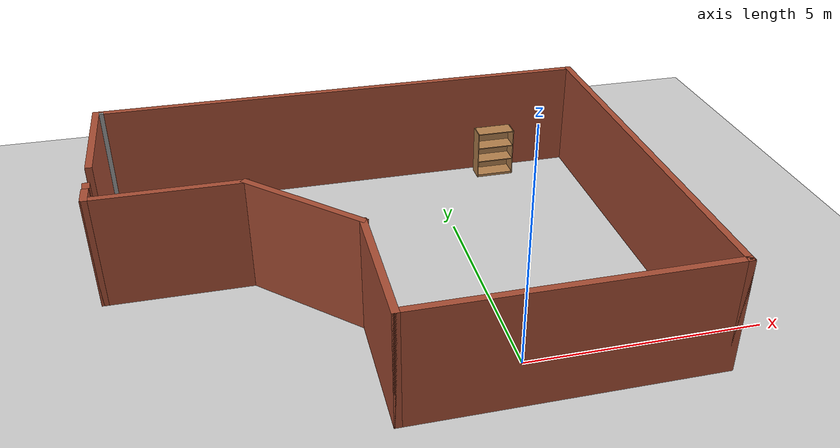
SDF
<sdf version="1.7">
 <world name="default">
  <light name="sun" type="directional">
   <pose>0 0 10 0 -0 0</pose>
   <diffuse>0.8 0.8 0.8 1</diffuse>
   <specular>0.2 0.2 0.2 1</specular>
   <attenuation>
    <range>1000</range>
    <constant>0.9</constant>
    <linear>0.01</linear>
    <quadratic>0.001</quadratic>
   </attenuation>
   <direction>-0.5 0.1 -0.9</direction>
   <spot><inner_angle>0</inner_angle><outer_angle>0</outer_angle><falloff>0</falloff></spot>
  </light>
  <model name="ground_plane">
   <static>1</static>
   <link name="link">
    <collision name="collision">
     <geometry><plane><normal>0 0 1</normal><size>100 100</size></plane></geometry>
     <surface>
      <contact><collide_bitmask>65535</collide_bitmask></contact>
      <friction><ode><mu>100</mu><mu2>50</mu2></ode></friction>
     </surface>
    </collision>
    <visual name="visual">
     <cast_shadows>0</cast_shadows>
     <geometry><plane><normal>0 0 1</normal><size>100 100</size></plane></geometry>
     <material>
      <script><uri>file://media/materials/scripts/gazebo.material</uri><name>Gazebo/Grey</name></script>
     </material>
    </visual>
   </link>
  </model>
  <gravity>0 0 -9.8</gravity>
  <magnetic_field>6e-06 2.3e-05 -4.2e-05</magnetic_field>
  <atmosphere type="adiabatic"/>
  <physics type="ode">
   <max_step_size>0.001</max_step_size>
   <real_time_factor>1</real_time_factor>
   <real_time_update_rate>1000</real_time_update_rate>
  </physics>
  <scene><ambient>0.4 0.4 0.4 1</ambient><background>0.7 0.7 0.7 1</background><shadows>1</shadows></scene>
  <spherical_coordinates>
   <surface_model>EARTH_WGS84</surface_model>
   <latitude_deg>0</latitude_deg>
   <longitude_deg>0</longitude_deg>
   <elevation>0</elevation>
   <heading_deg>0</heading_deg>
  </spherical_coordinates>
  <model name="room-with-slant">
   <pose>-2.03802 3.36232 0 0 -0 0</pose>
   <link name="Wall_0">
    <collision name="Wall_0_Collision">
     <geometry><box><size>0.5 0.15 2.5</size></box></geometry>
     <pose>0 0 1.25 0 -0 0</pose>
    </collision>
    <visual name="Wall_0_Visual">
     <pose>0 0 1.25 0 -0 0</pose>
     <geometry><box><size>0.5 0.15 2.5</size></box></geometry>
     <material>
      <script><uri>file://media/materials/scripts/gazebo.material</uri><name>Gazebo/Bricks</name></script>
      <ambient>1 1 1 1</ambient>
     </material>
     <meta><layer>0</layer></meta>
    </visual>
    <pose>-5.73263 0.615254 0 0 -0 -1.5708</pose>
   </link>
   <link name="Wall_1">
    <collision name="Wall_1_Collision">
     <geometry><box><size>3.25 0.15 2.5</size></box></geometry>
     <pose>0 0 1.25 0 -0 0</pose>
    </collision>
    <visual name="Wall_1_Visual">
     <pose>0 0 1.25 0 -0 0</pose>
     <geometry><box><size>3.25 0.15 2.5</size></box></geometry>
     <material>
      <script><uri>file://media/materials/scripts/gazebo.material</uri><name>Gazebo/Bricks</name></script>
      <ambient>1 1 1 1</ambient>
     </material>
     <meta><layer>0</layer></meta>
    </visual>
    <pose>-4.18263 0.440254 0 0 -0 0</pose>
   </link>
   <link name="Wall_2">
    <collision name="Wall_2_Collision">
     <geometry><box><size>3 0.15 2.5</size></box></geometry>
     <pose>0 0 1.25 0 -0 0</pose>
    </collision>
    <visual name="Wall_2_Visual">
     <pose>0 0 1.25 0 -0 0</pose>
     <geometry><box><size>3 0.15 2.5</size></box></geometry>
     <material>
      <script><uri>file://media/materials/scripts/gazebo.material</uri><name>Gazebo/Bricks</name></script>
      <ambient>1 1 1 1</ambient>
     </material>
     <meta><layer>0</layer></meta>
    </visual>
    <pose>-1.625 -0.567373 0 0 -0 -0.785398</pose>
   </link>
   <link name="Wall_3">
    <collision name="Wall_3_Collision">
     <geometry><box><size>3 0.15 2.5</size></box></geometry>
     <pose>0 0 1.25 0 -0 0</pose>
    </collision>
    <visual name="Wall_3_Visual">
     <pose>0 0 1.25 0 -0 0</pose>
     <geometry><box><size>3 0.15 2.5</size></box></geometry>
     <material>
      <script><uri>file://media/materials/scripts/gazebo.material</uri><name>Gazebo/Bricks</name></script>
      <ambient>1 1 1 1</ambient>
     </material>
     <meta><layer>0</layer></meta>
    </visual>
    <pose>-0.617373 -3 0 0 -0 -1.5708</pose>
   </link>
   <link name="Wall_4">
    <collision name="Wall_4_Collision">
     <geometry><box><size>6.5 0.15 2.5</size></box></geometry>
     <pose>0 0 1.25 0 -0 0</pose>
    </collision>
    <visual name="Wall_4_Visual">
     <pose>0 0 1.25 0 -0 0</pose>
     <geometry><box><size>6.5 0.15 2.5</size></box></geometry>
     <material>
      <script><uri>file://media/materials/scripts/gazebo.material</uri><name>Gazebo/Bricks</name></script>
      <ambient>1 1 1 1</ambient>
     </material>
     <meta><layer>0</layer></meta>
    </visual>
    <pose>2.55763 -4.425 0 0 -0 0</pose>
   </link>
   <link name="Wall_5">
    <collision name="Wall_5_Collision">
     <geometry><box><size>9 0.15 2.5</size></box></geometry>
     <pose>0 0 1.25 0 -0 0</pose>
    </collision>
    <visual name="Wall_5_Visual">
     <pose>0 0 1.25 0 -0 0</pose>
     <geometry><box><size>9 0.15 2.5</size></box></geometry>
     <material>
      <script><uri>file://media/materials/scripts/gazebo.material</uri><name>Gazebo/Bricks</name></script>
      <ambient>1 1 1 1</ambient>
     </material>
     <meta><layer>0</layer></meta>
    </visual>
    <pose>5.73263 0 0 0 -0 1.5708</pose>
   </link>
   <link name="Wall_6">
    <collision name="Wall_6_Collision">
     <geometry><box><size>11.5 0.15 2.5</size></box></geometry>
     <pose>0 0 1.25 0 -0 0</pose>
    </collision>
    <visual name="Wall_6_Visual">
     <pose>0 0 1.25 0 -0 0</pose>
     <geometry><box><size>11.5 0.15 2.5</size></box></geometry>
     <material>
      <script><uri>file://media/materials/scripts/gazebo.material</uri><name>Gazebo/Bricks</name></script>
      <ambient>1 1 1 1</ambient>
     </material>
     <meta><layer>0</layer></meta>
    </visual>
    <pose>0.057627 4.425 0 0 -0 3.14159</pose>
   </link>
   <link name="Wall_7">
    <collision name="Wall_7_Collision">
     <geometry><box><size>0.25 0.15 2.5</size></box></geometry>
     <pose>0 0 1.25 0 -0 0</pose>
    </collision>
    <visual name="Wall_7_Visual">
     <pose>0 0 1.25 0 -0 0</pose>
     <geometry><box><size>0.25 0.15 2.5</size></box></geometry>
     <material>
      <script><uri>file://media/materials/scripts/gazebo.material</uri><name>Gazebo/Grey</name></script>
      <ambient>1 1 1 1</ambient>
     </material>
     <meta><layer>0</layer></meta>
    </visual>
    <pose>-5.66737 4.425 0 0 -0 3.14159</pose>
   </link>
   <link name="Wall_8">
    <collision name="Wall_8_Collision">
     <geometry><box><size>2.75 0.15 2.5</size></box></geometry>
     <pose>0 0 1.25 0 -0 0</pose>
    </collision>
    <visual name="Wall_8_Visual">
     <pose>0 0 1.25 0 -0 0</pose>
     <geometry><box><size>2.75 0.15 2.5</size></box></geometry>
     <material>
      <script><uri>file://media/materials/scripts/gazebo.material</uri><name>Gazebo/Bricks</name></script>
      <ambient>1 1 1 1</ambient>
     </material>
     <meta><layer>0</layer></meta>
    </visual>
    <pose>-5.71737 3.125 0 0 -0 -1.5708</pose>
   </link>
   <static>1</static>
  </model>
  <model name="door-model">
   <link name="door">
    <inertial>
     <mass>20</mass>
     <inertia>
      <ixx>4.53808</ixx>
      <ixy>0</ixy>
      <ixz>0</ixz>
      <iyy>4.54003</iyy>
      <iyz>0</iyz>
      <izz>0.0512722</izz>
     </inertia>
    </inertial>
    <gravity>0</gravity>
    <visual name="visual">
     <geometry>
      <mesh><uri>model://door-model/./Door-VHandles-noFrame.stl</uri><scale>0.001 0.001 0.001</scale></mesh>
     </geometry>
     <material>
      <lighting>1</lighting>
      <script><uri>file://media/materials/scripts/gazebo.material</uri><name>Gazebo/Grey</name></script>
      <shader type="pixel"><normal_map>__default__</normal_map></shader>
      <ambient>0.3 0.3 0.3 1</ambient>
      <diffuse>0.7 0.7 0.7 1</diffuse>
      <specular>0.01 0.01 0.01 1</specular>
      <emissive>0 0 0 1</emissive>
     </material>
    </visual>
    <collision name="collision">
     <geometry>
      <mesh><uri>model://door-model/./Door-VHandles-noFrame.stl</uri><scale>0.001 0.001 0.001</scale></mesh>
     </geometry>
     <surface>
      <friction>
       <ode><mu>1</mu><mu2>1</mu2><fdir1>0 0 0</fdir1><slip1>0</slip1><slip2>0</slip2></ode>
       <torsional>
        <coefficient>1</coefficient>
        <patch_radius>0</patch_radius>
        <surface_radius>0</surface_radius>
        <use_patch_radius>1</use_patch_radius>
        <ode><slip>0</slip></ode>
       </torsional>
      </friction>
      <bounce><restitution_coefficient>0</restitution_coefficient><threshold>1e+06</threshold></bounce>
      <contact>
       <collide_without_contact>0</collide_without_contact>
       <collide_without_contact_bitmask>1</collide_without_contact_bitmask>
       <collide_bitmask>1</collide_bitmask>
       <ode>
        <soft_cfm>0</soft_cfm>
        <soft_erp>0.2</soft_erp>
        <kp>1e+13</kp>
        <kd>1</kd>
        <max_vel>0.01</max_vel>
        <min_depth>0</min_depth>
       </ode>
       <bullet>
        <split_impulse>1</split_impulse>
        <split_impulse_penetration_threshold>-0.01</split_impulse_penetration_threshold>
        <soft_cfm>0</soft_cfm>
        <soft_erp>0.2</soft_erp>
        <kp>1e+13</kp>
        <kd>1</kd>
       </bullet>
      </contact>
     </surface>
    </collision>
   </link>
   <link name="pole">
    <inertial>
     <mass>100</mass>
     <inertia>
      <ixx>0.001</ixx>
      <ixy>0.001</ixy>
      <ixz>0.001</ixz>
      <iyy>0.001</iyy>
      <iyz>0.001</iyz>
      <izz>0.001</izz>
     </inertia>
    </inertial>
    <pose>-0.02632 0 0.308096 0 -0 0</pose>
    <gravity>0</gravity>
    <kinematic>1</kinematic>
    <visual name="visual">
     <geometry><box><size>0.048276 0.0462 0.625074</size></box></geometry>
     <material>
      <lighting>1</lighting>
      <script><uri>file://media/materials/scripts/gazebo.material</uri><name>Gazebo/Grey</name></script>
      <shader type="pixel"><normal_map>__default__</normal_map></shader>
      <ambient>0.3 0.3 0.3 1</ambient>
      <diffuse>0.7 0.7 0.7 1</diffuse>
      <specular>0.01 0.01 0.01 1</specular>
      <emissive>0 0 0 1</emissive>
     </material>
    </visual>
    <collision name="collision">
     <geometry><box><size>0.048 0.046201 0.625074</size></box></geometry>
     <surface>
      <friction>
       <ode><mu>1</mu><mu2>1</mu2><fdir1>0 0 0</fdir1><slip1>0</slip1><slip2>0</slip2></ode>
       <torsional>
        <coefficient>1</coefficient>
        <patch_radius>0</patch_radius>
        <surface_radius>0</surface_radius>
        <use_patch_radius>1</use_patch_radius>
        <ode><slip>0</slip></ode>
       </torsional>
      </friction>
      <bounce><restitution_coefficient>0</restitution_coefficient><threshold>1e+06</threshold></bounce>
      <contact>
       <collide_without_contact>0</collide_without_contact>
       <collide_without_contact_bitmask>1</collide_without_contact_bitmask>
       <collide_bitmask>1</collide_bitmask>
       <ode>
        <soft_cfm>0</soft_cfm>
        <soft_erp>0.2</soft_erp>
        <kp>1e+13</kp>
        <kd>1</kd>
        <max_vel>0.01</max_vel>
        <min_depth>0</min_depth>
       </ode>
       <bullet>
        <split_impulse>1</split_impulse>
        <split_impulse_penetration_threshold>-0.01</split_impulse_penetration_threshold>
        <soft_cfm>0</soft_cfm>
        <soft_erp>0.2</soft_erp>
        <kp>1e+13</kp>
        <kd>1</kd>
       </bullet>
      </contact>
     </surface>
    </collision>
   </link>
   <joint name="hinge" type="revolute">
    <parent>pole</parent>
    <child>door</child>
    <pose>0 0 0.3 0 -0 0</pose>
    <axis>
     <xyz>0 0 1</xyz>
     <limit><lower>-1.74533</lower><upper>1.74533</upper><effort>3900</effort><velocity>0.62</velocity></limit>
     <dynamics>
      <spring_reference>0</spring_reference>
      <spring_stiffness>0</spring_stiffness>
      <damping>0.1</damping>
      <friction>0.1</friction>
     </dynamics>
    </axis>
    <physics>
     <ode><limit><cfm>0</cfm><erp>0.2</erp></limit><suspension><cfm>0</cfm><erp>0.2</erp></suspension></ode>
    </physics>
   </joint>
   <static>0</static>
   <pose>-7.70314 4.5411 0 0 -0 1.57439</pose>
  </model>
  <model name="bookshelf">
   <static>1</static>
   <link name="link">
    <inertial><mass>1</mass></inertial>
    <collision name="back">
     <pose>0 0.005 0.6 0 -0 0</pose>
     <geometry><box><size>0.9 0.01 1.2</size></box></geometry>
    </collision>
    <visual name="visual1">
     <pose>0 0.005 0.6 0 -0 0</pose>
     <geometry><box><size>0.9 0.01 1.2</size></box></geometry>
     <material>
      <script><uri>file://media/materials/scripts/gazebo.material</uri><name>Gazebo/Wood</name></script>
     </material>
    </visual>
    <collision name="left_side">
     <pose>0.45 -0.195 0.6 0 -0 0</pose>
     <geometry><box><size>0.02 0.4 1.2</size></box></geometry>
    </collision>
    <visual name="visual2">
     <pose>0.45 -0.195 0.6 0 -0 0</pose>
     <geometry><box><size>0.02 0.4 1.2</size></box></geometry>
     <material>
      <script><uri>file://media/materials/scripts/gazebo.material</uri><name>Gazebo/Wood</name></script>
     </material>
    </visual>
    <collision name="right_side">
     <pose>-0.45 -0.195 0.6 0 -0 0</pose>
     <geometry><box><size>0.02 0.4 1.2</size></box></geometry>
    </collision>
    <visual name="visual3">
     <pose>-0.45 -0.195 0.6 0 -0 0</pose>
     <geometry><box><size>0.02 0.4 1.2</size></box></geometry>
     <material>
      <script><uri>file://media/materials/scripts/gazebo.material</uri><name>Gazebo/Wood</name></script>
     </material>
    </visual>
    <collision name="bottom">
     <pose>0 -0.195 0.03 0 -0 0</pose>
     <geometry><box><size>0.88 0.4 0.06</size></box></geometry>
    </collision>
    <visual name="visual4">
     <pose>0 -0.195 0.03 0 -0 0</pose>
     <geometry><box><size>0.88 0.4 0.06</size></box></geometry>
     <material>
      <script><uri>file://media/materials/scripts/gazebo.material</uri><name>Gazebo/Wood</name></script>
     </material>
    </visual>
    <collision name="top">
     <pose>0 -0.195 1.19 0 -0 0</pose>
     <geometry><box><size>0.88 0.4 0.02</size></box></geometry>
    </collision>
    <visual name="visual5">
     <pose>0 -0.195 1.19 0 -0 0</pose>
     <geometry><box><size>0.88 0.4 0.02</size></box></geometry>
     <material>
      <script><uri>file://media/materials/scripts/gazebo.material</uri><name>Gazebo/Wood</name></script>
     </material>
    </visual>
    <collision name="low_shelf">
     <pose>0 -0.195 0.43 0 -0 0</pose>
     <geometry><box><size>0.88 0.4 0.02</size></box></geometry>
    </collision>
    <visual name="visual6">
     <pose>0 -0.195 0.43 0 -0 0</pose>
     <geometry><box><size>0.88 0.4 0.02</size></box></geometry>
     <material>
      <script><uri>file://media/materials/scripts/gazebo.material</uri><name>Gazebo/Wood</name></script>
     </material>
    </visual>
    <collision name="high_shelf">
     <pose>0 -0.195 0.8 0 -0 0</pose>
     <geometry><box><size>0.88 0.4 0.02</size></box></geometry>
    </collision>
    <visual name="visual7">
     <pose>0 -0.195 0.8 0 -0 0</pose>
     <geometry><box><size>0.88 0.4 0.02</size></box></geometry>
     <material>
      <script><uri>file://media/materials/scripts/gazebo.material</uri><name>Gazebo/Wood</name></script>
     </material>
    </visual>
   </link>
   <pose>1.66514 7.57511 0 0 -0 0</pose>
  </model>
  <model name="gap-filler">
   <pose>-4.61349 3.08719 0 0 0 -1.53014</pose>
   <link name="Wall_4">
    <collision name="Wall_4_Collision">
     <geometry><box><size>0.25 0.15 2.5</size></box></geometry>
     <pose>0 0 1.25 0 -0 0</pose>
    </collision>
    <visual name="Wall_4_Visual">
     <pose>0 0 1.25 0 -0 0</pose>
     <geometry><box><size>0.25 0.15 2.5</size></box></geometry>
     <material>
      <script><uri>file://media/materials/scripts/gazebo.material</uri><name>Gazebo/Bricks</name></script>
      <ambient>1 1 1 1</ambient>
     </material>
     <meta><layer>0</layer></meta>
    </visual>
    <pose>-1.38938 -3.0906 0 0 -0 3.14159</pose>
   </link>
   <static>1</static>
  </model>
 </world>
</sdf>
